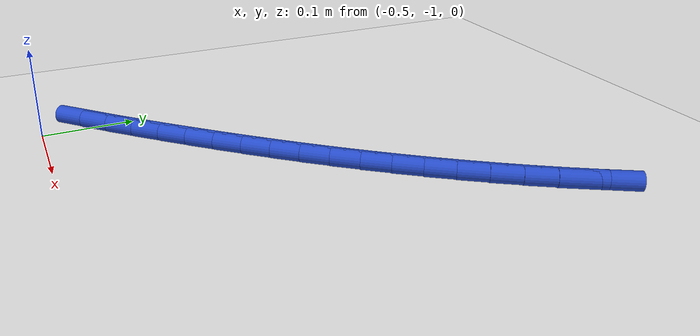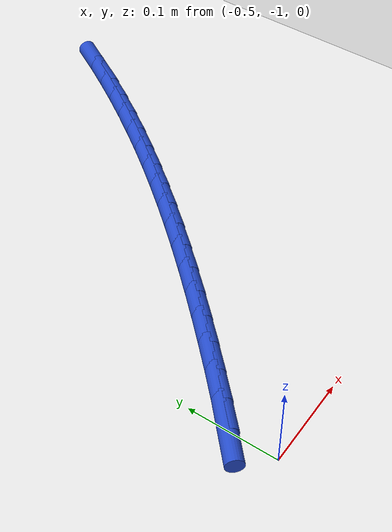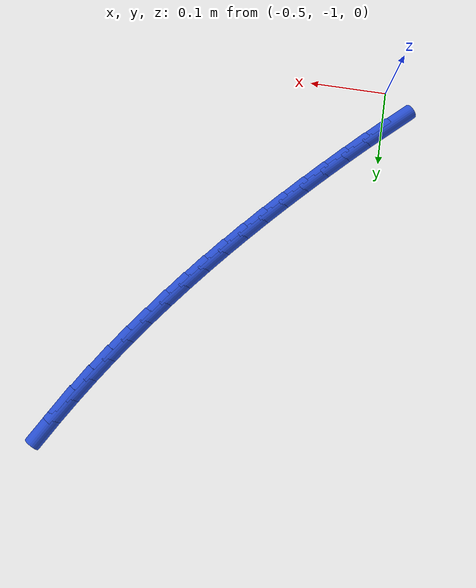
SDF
<sdf version="1.6">
 <world name="default">
  <model name="ground_plane">
   <static>1</static>
   <link name="link">
    <collision name="collision">
     <geometry><plane><normal>0 0 1</normal><size>100 100</size></plane></geometry>
     <surface><friction><ode><mu>100</mu><mu2>50</mu2></ode></friction></surface>
    </collision>
    <visual name="visual">
     <cast_shadows>0</cast_shadows>
     <geometry><plane><normal>0 0 1</normal><size>100 100</size></plane></geometry>
     <material>
      <script><uri>file://media/materials/scripts/gazebo.material</uri><name>Gazebo/WhiteGlow</name></script>
     </material>
    </visual>
   </link>
  </model>
  <model name="line">
   <link name="link_176">
    <pose>-0.5042918783767548 -0.9470643394436867 0.01 0 1.57 0.7485400950985588</pose>
    <collision name="collision">
     <geometry><cylinder><radius>0.01</radius><length>0.08</length></cylinder></geometry>
    </collision>
    <visual name="visual">
     <material>
      <script><name>Gazebo/Blue</name><uri>file://media/materials/scripts/gazebo.material</uri></script>
     </material>
     <geometry><cylinder><radius>0.01</radius><length>0.08</length></cylinder></geometry>
    </visual>
   </link>
   <link name="link_177">
    <pose>-0.479077731171235 -0.9236435926772368 0.01 0 1.57 0.7706467544394083</pose>
    <collision name="collision">
     <geometry><cylinder><radius>0.01</radius><length>0.08</length></cylinder></geometry>
    </collision>
    <visual name="visual">
     <material>
      <script><name>Gazebo/Blue</name><uri>file://media/materials/scripts/gazebo.material</uri></script>
     </material>
     <geometry><cylinder><radius>0.01</radius><length>0.08</length></cylinder></geometry>
    </visual>
   </link>
   <link name="link_178">
    <pose>-0.45442867650214125 -0.8997112342860504 0.01 0 1.57 0.7855771908925239</pose>
    <collision name="collision">
     <geometry><cylinder><radius>0.01</radius><length>0.08</length></cylinder></geometry>
    </collision>
    <visual name="visual">
     <material>
      <script><name>Gazebo/Blue</name><uri>file://media/materials/scripts/gazebo.material</uri></script>
     </material>
     <geometry><cylinder><radius>0.01</radius><length>0.08</length></cylinder></geometry>
    </visual>
   </link>
   <link name="link_179">
    <pose>-0.4303362679239243 -0.8756101977559845 0.01 0 1.57 0.7963233166802526</pose>
    <collision name="collision">
     <geometry><cylinder><radius>0.01</radius><length>0.08</length></cylinder></geometry>
    </collision>
    <visual name="visual">
     <material>
      <script><name>Gazebo/Blue</name><uri>file://media/materials/scripts/gazebo.material</uri></script>
     </material>
     <geometry><cylinder><radius>0.01</radius><length>0.08</length></cylinder></geometry>
    </visual>
   </link>
   <link name="link_180">
    <pose>-0.40679369434411394 -0.851547508691064 0.01 0 1.57 0.807744057865613</pose>
    <collision name="collision">
     <geometry><cylinder><radius>0.01</radius><length>0.08</length></cylinder></geometry>
    </collision>
    <visual name="visual">
     <material>
      <script><name>Gazebo/Blue</name><uri>file://media/materials/scripts/gazebo.material</uri></script>
     </material>
     <geometry><cylinder><radius>0.01</radius><length>0.08</length></cylinder></geometry>
    </visual>
   </link>
   <link name="link_181">
    <pose>-0.383796922955503 -0.8274993001315883 0.01 0 1.57 0.8203104185480135</pose>
    <collision name="collision">
     <geometry><cylinder><radius>0.01</radius><length>0.08</length></cylinder></geometry>
    </collision>
    <visual name="visual">
     <material>
      <script><name>Gazebo/Blue</name><uri>file://media/materials/scripts/gazebo.material</uri></script>
     </material>
     <geometry><cylinder><radius>0.01</radius><length>0.08</length></cylinder></geometry>
    </visual>
   </link>
   <link name="link_182">
    <pose>-0.36134219085656577 -0.8034192742985093 0.01 0 1.57 0.8340132147523064</pose>
    <collision name="collision">
     <geometry><cylinder><radius>0.01</radius><length>0.08</length></cylinder></geometry>
    </collision>
    <visual name="visual">
     <material>
      <script><name>Gazebo/Blue</name><uri>file://media/materials/scripts/gazebo.material</uri></script>
     </material>
     <geometry><cylinder><radius>0.01</radius><length>0.08</length></cylinder></geometry>
    </visual>
   </link>
   <link name="link_183">
    <pose>-0.33942573514577595 -0.779261133412776 0.01 0 1.57 0.8488329987868766</pose>
    <collision name="collision">
     <geometry><cylinder><radius>0.01</radius><length>0.08</length></cylinder></geometry>
    </collision>
    <visual name="visual">
     <material>
      <script><name>Gazebo/Blue</name><uri>file://media/materials/scripts/gazebo.material</uri></script>
     </material>
     <geometry><cylinder><radius>0.01</radius><length>0.08</length></cylinder></geometry>
    </visual>
   </link>
   <link name="link_184">
    <pose>-0.31804379292160906 -0.7549785796953404 0.01 0 1.57 0.8647393904988128</pose>
    <collision name="collision">
     <geometry><cylinder><radius>0.01</radius><length>0.08</length></cylinder></geometry>
    </collision>
    <visual name="visual">
     <material>
      <script><name>Gazebo/Blue</name><uri>file://media/materials/scripts/gazebo.material</uri></script>
     </material>
     <geometry><cylinder><radius>0.01</radius><length>0.08</length></cylinder></geometry>
    </visual>
   </link>
   <link name="link_185">
    <pose>-0.2971926012825388 -0.7305253153671524 0.01 0 1.57 0.8816906015762467</pose>
    <collision name="collision">
     <geometry><cylinder><radius>0.01</radius><length>0.08</length></cylinder></geometry>
    </collision>
    <visual name="visual">
     <material>
      <script><name>Gazebo/Blue</name><uri>file://media/materials/scripts/gazebo.material</uri></script>
     </material>
     <geometry><cylinder><radius>0.01</radius><length>0.08</length></cylinder></geometry>
    </visual>
   </link>
   <link name="link_186">
    <pose>-0.2768683973270396 -0.7058550426491625 0.01 0 1.57 0.8996332042006063</pose>
    <collision name="collision">
     <geometry><cylinder><radius>0.01</radius><length>0.08</length></cylinder></geometry>
    </collision>
    <visual name="visual">
     <material>
      <script><name>Gazebo/Blue</name><uri>file://media/materials/scripts/gazebo.material</uri></script>
     </material>
     <geometry><cylinder><radius>0.01</radius><length>0.08</length></cylinder></geometry>
    </visual>
   </link>
   <link name="link_187">
    <pose>-0.25706741815358564 -0.6809214637623218 0.01 0 1.57 0.9185021908997483</pose>
    <collision name="collision">
     <geometry><cylinder><radius>0.01</radius><length>0.08</length></cylinder></geometry>
    </collision>
    <visual name="visual">
     <material>
      <script><name>Gazebo/Blue</name><uri>file://media/materials/scripts/gazebo.material</uri></script>
     </material>
     <geometry><cylinder><radius>0.01</radius><length>0.08</length></cylinder></geometry>
    </visual>
   </link>
   <link name="link_188">
    <pose>-0.2377859008606515 -0.6556782809275801 0.01 0 1.57 0.938221363206724</pose>
    <collision name="collision">
     <geometry><cylinder><radius>0.01</radius><length>0.08</length></cylinder></geometry>
    </collision>
    <visual name="visual">
     <material>
      <script><name>Gazebo/Blue</name><uri>file://media/materials/scripts/gazebo.material</uri></script>
     </material>
     <geometry><cylinder><radius>0.01</radius><length>0.08</length></cylinder></geometry>
    </visual>
   </link>
   <link name="link_189">
    <pose>-0.21902008254671082 -0.6300791963658878 0.01 0 1.57 0.9587040725609856</pose>
    <collision name="collision">
     <geometry><cylinder><radius>0.01</radius><length>0.08</length></cylinder></geometry>
    </collision>
    <visual name="visual">
     <material>
      <script><name>Gazebo/Blue</name><uri>file://media/materials/scripts/gazebo.material</uri></script>
     </material>
     <geometry><cylinder><radius>0.01</radius><length>0.08</length></cylinder></geometry>
    </visual>
   </link>
   <link name="link_190">
    <pose>-0.200766200310239 -0.6040779122981967 0.01 0 1.57 0.9798543183051842</pose>
    <collision name="collision">
     <geometry><cylinder><radius>0.01</radius><length>0.08</length></cylinder></geometry>
    </collision>
    <visual name="visual">
     <material>
      <script><name>Gazebo/Blue</name><uri>file://media/materials/scripts/gazebo.material</uri></script>
     </material>
     <geometry><cylinder><radius>0.01</radius><length>0.08</length></cylinder></geometry>
    </visual>
   </link>
   <link name="link_191">
    <pose>-0.18302049124970982 -0.5776281309454565 0.01 0 1.57 1.0015793630316057</pose>
    <collision name="collision">
     <geometry><cylinder><radius>0.01</radius><length>0.08</length></cylinder></geometry>
    </collision>
    <visual name="visual">
     <material>
      <script><name>Gazebo/Blue</name><uri>file://media/materials/scripts/gazebo.material</uri></script>
     </material>
     <geometry><cylinder><radius>0.01</radius><length>0.08</length></cylinder></geometry>
    </visual>
   </link>
   <link name="link_192">
    <pose>-0.16578032560933137 -0.5506846620660656 0.01 0 1.57 1.0241018676969407</pose>
    <collision name="collision">
     <geometry><cylinder><radius>0.01</radius><length>0.08</length></cylinder></geometry>
    </collision>
    <visual name="visual">
     <material>
      <script><name>Gazebo/Blue</name><uri>file://media/materials/scripts/gazebo.material</uri></script>
     </material>
     <geometry><cylinder><radius>0.01</radius><length>0.08</length></cylinder></geometry>
    </visual>
   </link>
   <link name="link_193">
    <pose>-0.14907373043003985 -0.5232322793933905 0.01 0 1.57 1.0477836372092464</pose>
    <collision name="collision">
     <geometry><cylinder><radius>0.01</radius><length>0.08</length></cylinder></geometry>
    </collision>
    <visual name="visual">
     <material>
      <script><name>Gazebo/Blue</name><uri>file://media/materials/scripts/gazebo.material</uri></script>
     </material>
     <geometry><cylinder><radius>0.01</radius><length>0.08</length></cylinder></geometry>
    </visual>
   </link>
  </model>
 </world>
</sdf>
